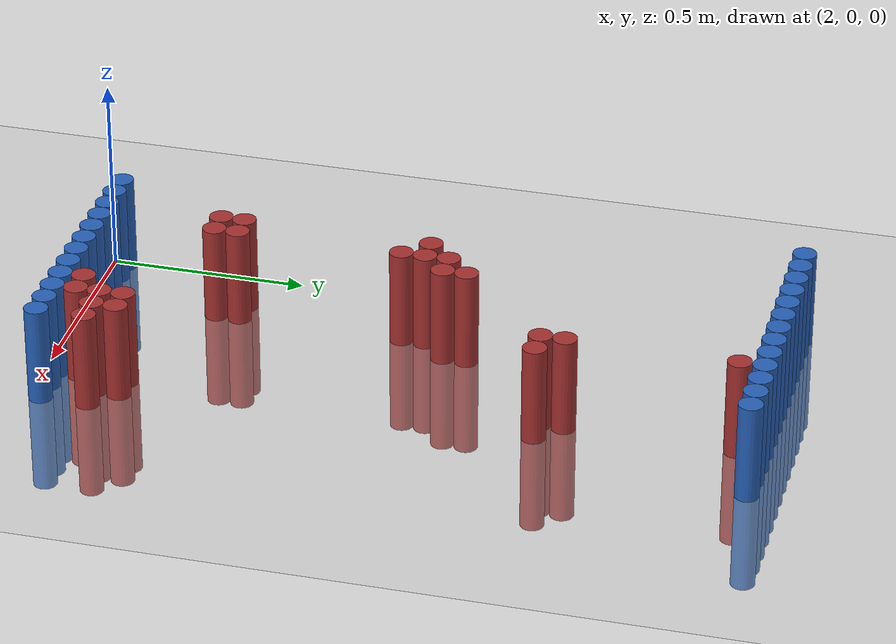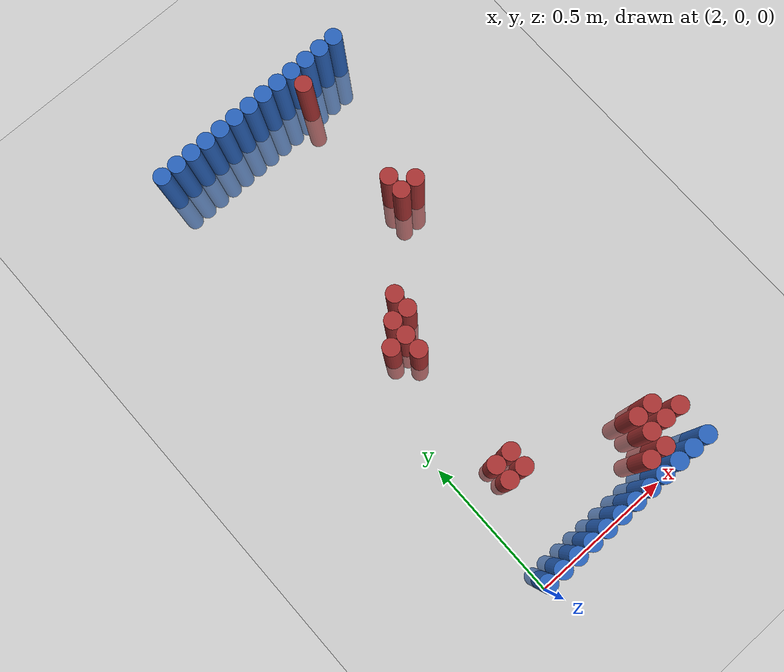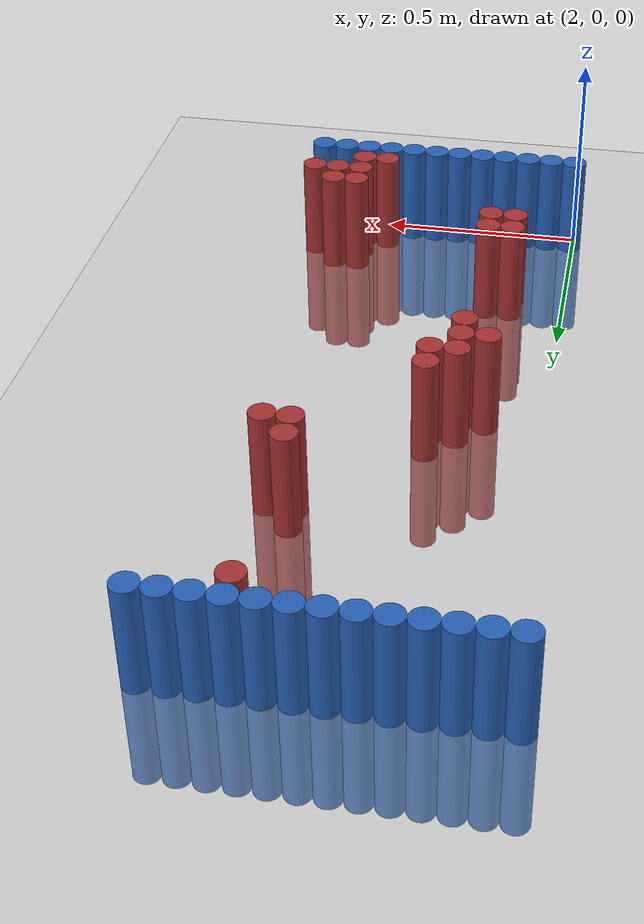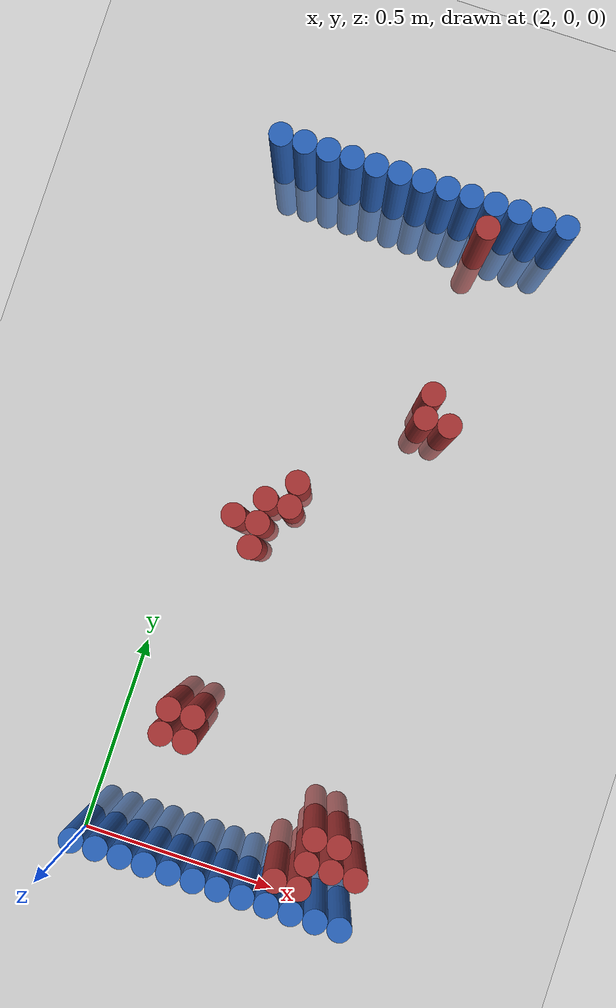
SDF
<sdf version="1.6">
 <world name="default">
  <model name="ground_plane">
   <static>1</static>
   <link name="link">
    <collision name="collision">
     <geometry><plane><normal>0 0 1</normal><size>100 100</size></plane></geometry>
     <surface><friction><ode><mu>100</mu><mu2>50</mu2></ode></friction></surface>
    </collision>
    <visual name="visual">
     <cast_shadows>0</cast_shadows>
     <geometry><plane><normal>0 0 1</normal><size>100 100</size></plane></geometry>
     <material>
      <script><uri>file://media/materials/scripts/gazebo.material</uri><name>Gazebo/Grey</name></script>
     </material>
    </visual>
   </link>
  </model>
  <model name="unit_cylinder_92">
   <static>1</static>
   <pose>1.950000 1.770000 0.000000 0.000000 0.000000 0.000000</pose>
   <link name="link">
    <inertial>
     <mass>1</mass>
     <inertia><ixx>0.145833</ixx><ixy>0</ixy><ixz>0</ixz><iyy>0.145833</iyy><iyz>0</iyz><izz>0.125</izz></inertia>
    </inertial>
    <collision name="collision">
     <geometry><cylinder><radius>0.030000</radius><length>0.5</length></cylinder></geometry>
    </collision>
    <visual name="visual">
     <geometry><cylinder><radius>0.030000</radius><length>0.5</length></cylinder></geometry>
     <material>
      <ambient>0.152000 0.379000 0.720000 1</ambient>
      <diffuse>0.152000 0.379000 0.720000 1</diffuse>
     </material>
     <material>
      <script><name>Gazebo/Grey</name><uri>file://media/materials/scripts/gazebo.material</uri></script>
     </material>
    </visual>
   </link>
  </model>
  <model name="unit_cylinder_93">
   <static>1</static>
   <pose>2.010000 0.030000 0.000000 0.000000 0.000000 0.000000</pose>
   <link name="link">
    <inertial>
     <mass>1</mass>
     <inertia><ixx>0.145833</ixx><ixy>0</ixy><ixz>0</ixz><iyy>0.145833</iyy><iyz>0</iyz><izz>0.125</izz></inertia>
    </inertial>
    <collision name="collision">
     <geometry><cylinder><radius>0.030000</radius><length>0.5</length></cylinder></geometry>
    </collision>
    <visual name="visual">
     <geometry><cylinder><radius>0.030000</radius><length>0.5</length></cylinder></geometry>
     <material>
      <ambient>0.152000 0.379000 0.720000 1</ambient>
      <diffuse>0.152000 0.379000 0.720000 1</diffuse>
     </material>
     <material>
      <script><name>Gazebo/Grey</name><uri>file://media/materials/scripts/gazebo.material</uri></script>
     </material>
    </visual>
   </link>
  </model>
  <model name="unit_cylinder_94">
   <static>1</static>
   <pose>2.010000 1.770000 0.000000 0.000000 0.000000 0.000000</pose>
   <link name="link">
    <inertial>
     <mass>1</mass>
     <inertia><ixx>0.145833</ixx><ixy>0</ixy><ixz>0</ixz><iyy>0.145833</iyy><iyz>0</iyz><izz>0.125</izz></inertia>
    </inertial>
    <collision name="collision">
     <geometry><cylinder><radius>0.030000</radius><length>0.5</length></cylinder></geometry>
    </collision>
    <visual name="visual">
     <geometry><cylinder><radius>0.030000</radius><length>0.5</length></cylinder></geometry>
     <material>
      <ambient>0.152000 0.379000 0.720000 1</ambient>
      <diffuse>0.152000 0.379000 0.720000 1</diffuse>
     </material>
     <material>
      <script><name>Gazebo/Grey</name><uri>file://media/materials/scripts/gazebo.material</uri></script>
     </material>
    </visual>
   </link>
  </model>
  <model name="unit_cylinder_95">
   <static>1</static>
   <pose>2.070000 1.770000 0.000000 0.000000 0.000000 0.000000</pose>
   <link name="link">
    <inertial>
     <mass>1</mass>
     <inertia><ixx>0.145833</ixx><ixy>0</ixy><ixz>0</ixz><iyy>0.145833</iyy><iyz>0</iyz><izz>0.125</izz></inertia>
    </inertial>
    <collision name="collision">
     <geometry><cylinder><radius>0.030000</radius><length>0.5</length></cylinder></geometry>
    </collision>
    <visual name="visual">
     <geometry><cylinder><radius>0.030000</radius><length>0.5</length></cylinder></geometry>
     <material>
      <ambient>0.152000 0.379000 0.720000 1</ambient>
      <diffuse>0.152000 0.379000 0.720000 1</diffuse>
     </material>
     <material>
      <script><name>Gazebo/Grey</name><uri>file://media/materials/scripts/gazebo.material</uri></script>
     </material>
    </visual>
   </link>
  </model>
  <model name="unit_cylinder_96">
   <static>1</static>
   <pose>2.130000 1.770000 0.000000 0.000000 0.000000 0.000000</pose>
   <link name="link">
    <inertial>
     <mass>1</mass>
     <inertia><ixx>0.145833</ixx><ixy>0</ixy><ixz>0</ixz><iyy>0.145833</iyy><iyz>0</iyz><izz>0.125</izz></inertia>
    </inertial>
    <collision name="collision">
     <geometry><cylinder><radius>0.030000</radius><length>0.5</length></cylinder></geometry>
    </collision>
    <visual name="visual">
     <geometry><cylinder><radius>0.030000</radius><length>0.5</length></cylinder></geometry>
     <material>
      <ambient>0.152000 0.379000 0.720000 1</ambient>
      <diffuse>0.152000 0.379000 0.720000 1</diffuse>
     </material>
     <material>
      <script><name>Gazebo/Grey</name><uri>file://media/materials/scripts/gazebo.material</uri></script>
     </material>
    </visual>
   </link>
  </model>
  <model name="unit_cylinder_97">
   <static>1</static>
   <pose>2.190000 1.770000 0.000000 0.000000 0.000000 0.000000</pose>
   <link name="link">
    <inertial>
     <mass>1</mass>
     <inertia><ixx>0.145833</ixx><ixy>0</ixy><ixz>0</ixz><iyy>0.145833</iyy><iyz>0</iyz><izz>0.125</izz></inertia>
    </inertial>
    <collision name="collision">
     <geometry><cylinder><radius>0.030000</radius><length>0.5</length></cylinder></geometry>
    </collision>
    <visual name="visual">
     <geometry><cylinder><radius>0.030000</radius><length>0.5</length></cylinder></geometry>
     <material>
      <ambient>0.152000 0.379000 0.720000 1</ambient>
      <diffuse>0.152000 0.379000 0.720000 1</diffuse>
     </material>
     <material>
      <script><name>Gazebo/Grey</name><uri>file://media/materials/scripts/gazebo.material</uri></script>
     </material>
    </visual>
   </link>
  </model>
  <model name="unit_cylinder_98">
   <static>1</static>
   <pose>2.250000 1.770000 0.000000 0.000000 0.000000 0.000000</pose>
   <link name="link">
    <inertial>
     <mass>1</mass>
     <inertia><ixx>0.145833</ixx><ixy>0</ixy><ixz>0</ixz><iyy>0.145833</iyy><iyz>0</iyz><izz>0.125</izz></inertia>
    </inertial>
    <collision name="collision">
     <geometry><cylinder><radius>0.030000</radius><length>0.5</length></cylinder></geometry>
    </collision>
    <visual name="visual">
     <geometry><cylinder><radius>0.030000</radius><length>0.5</length></cylinder></geometry>
     <material>
      <ambient>0.152000 0.379000 0.720000 1</ambient>
      <diffuse>0.152000 0.379000 0.720000 1</diffuse>
     </material>
     <material>
      <script><name>Gazebo/Grey</name><uri>file://media/materials/scripts/gazebo.material</uri></script>
     </material>
    </visual>
   </link>
  </model>
  <model name="unit_cylinder_99">
   <static>1</static>
   <pose>2.310000 1.770000 0.000000 0.000000 0.000000 0.000000</pose>
   <link name="link">
    <inertial>
     <mass>1</mass>
     <inertia><ixx>0.145833</ixx><ixy>0</ixy><ixz>0</ixz><iyy>0.145833</iyy><iyz>0</iyz><izz>0.125</izz></inertia>
    </inertial>
    <collision name="collision">
     <geometry><cylinder><radius>0.030000</radius><length>0.5</length></cylinder></geometry>
    </collision>
    <visual name="visual">
     <geometry><cylinder><radius>0.030000</radius><length>0.5</length></cylinder></geometry>
     <material>
      <ambient>0.152000 0.379000 0.720000 1</ambient>
      <diffuse>0.152000 0.379000 0.720000 1</diffuse>
     </material>
     <material>
      <script><name>Gazebo/Grey</name><uri>file://media/materials/scripts/gazebo.material</uri></script>
     </material>
    </visual>
   </link>
  </model>
  <model name="unit_cylinder_100">
   <static>1</static>
   <pose>2.370000 1.770000 0.000000 0.000000 0.000000 0.000000</pose>
   <link name="link">
    <inertial>
     <mass>1</mass>
     <inertia><ixx>0.145833</ixx><ixy>0</ixy><ixz>0</ixz><iyy>0.145833</iyy><iyz>0</iyz><izz>0.125</izz></inertia>
    </inertial>
    <collision name="collision">
     <geometry><cylinder><radius>0.030000</radius><length>0.5</length></cylinder></geometry>
    </collision>
    <visual name="visual">
     <geometry><cylinder><radius>0.030000</radius><length>0.5</length></cylinder></geometry>
     <material>
      <ambient>0.152000 0.379000 0.720000 1</ambient>
      <diffuse>0.152000 0.379000 0.720000 1</diffuse>
     </material>
     <material>
      <script><name>Gazebo/Grey</name><uri>file://media/materials/scripts/gazebo.material</uri></script>
     </material>
    </visual>
   </link>
  </model>
  <model name="unit_cylinder_101">
   <static>1</static>
   <pose>2.430000 1.770000 0.000000 0.000000 0.000000 0.000000</pose>
   <link name="link">
    <inertial>
     <mass>1</mass>
     <inertia><ixx>0.145833</ixx><ixy>0</ixy><ixz>0</ixz><iyy>0.145833</iyy><iyz>0</iyz><izz>0.125</izz></inertia>
    </inertial>
    <collision name="collision">
     <geometry><cylinder><radius>0.030000</radius><length>0.5</length></cylinder></geometry>
    </collision>
    <visual name="visual">
     <geometry><cylinder><radius>0.030000</radius><length>0.5</length></cylinder></geometry>
     <material>
      <ambient>0.152000 0.379000 0.720000 1</ambient>
      <diffuse>0.152000 0.379000 0.720000 1</diffuse>
     </material>
     <material>
      <script><name>Gazebo/Grey</name><uri>file://media/materials/scripts/gazebo.material</uri></script>
     </material>
    </visual>
   </link>
  </model>
  <model name="unit_cylinder_102">
   <static>1</static>
   <pose>2.490000 1.770000 0.000000 0.000000 0.000000 0.000000</pose>
   <link name="link">
    <inertial>
     <mass>1</mass>
     <inertia><ixx>0.145833</ixx><ixy>0</ixy><ixz>0</ixz><iyy>0.145833</iyy><iyz>0</iyz><izz>0.125</izz></inertia>
    </inertial>
    <collision name="collision">
     <geometry><cylinder><radius>0.030000</radius><length>0.5</length></cylinder></geometry>
    </collision>
    <visual name="visual">
     <geometry><cylinder><radius>0.030000</radius><length>0.5</length></cylinder></geometry>
     <material>
      <ambient>0.152000 0.379000 0.720000 1</ambient>
      <diffuse>0.152000 0.379000 0.720000 1</diffuse>
     </material>
     <material>
      <script><name>Gazebo/Grey</name><uri>file://media/materials/scripts/gazebo.material</uri></script>
     </material>
    </visual>
   </link>
  </model>
  <model name="unit_cylinder_103">
   <static>1</static>
   <pose>2.550000 1.770000 0.000000 0.000000 0.000000 0.000000</pose>
   <link name="link">
    <inertial>
     <mass>1</mass>
     <inertia><ixx>0.145833</ixx><ixy>0</ixy><ixz>0</ixz><iyy>0.145833</iyy><iyz>0</iyz><izz>0.125</izz></inertia>
    </inertial>
    <collision name="collision">
     <geometry><cylinder><radius>0.030000</radius><length>0.5</length></cylinder></geometry>
    </collision>
    <visual name="visual">
     <geometry><cylinder><radius>0.030000</radius><length>0.5</length></cylinder></geometry>
     <material>
      <ambient>0.152000 0.379000 0.720000 1</ambient>
      <diffuse>0.152000 0.379000 0.720000 1</diffuse>
     </material>
     <material>
      <script><name>Gazebo/Grey</name><uri>file://media/materials/scripts/gazebo.material</uri></script>
     </material>
    </visual>
   </link>
  </model>
  <model name="unit_cylinder_104">
   <static>1</static>
   <pose>2.610000 1.770000 0.000000 0.000000 0.000000 0.000000</pose>
   <link name="link">
    <inertial>
     <mass>1</mass>
     <inertia><ixx>0.145833</ixx><ixy>0</ixy><ixz>0</ixz><iyy>0.145833</iyy><iyz>0</iyz><izz>0.125</izz></inertia>
    </inertial>
    <collision name="collision">
     <geometry><cylinder><radius>0.030000</radius><length>0.5</length></cylinder></geometry>
    </collision>
    <visual name="visual">
     <geometry><cylinder><radius>0.030000</radius><length>0.5</length></cylinder></geometry>
     <material>
      <ambient>0.152000 0.379000 0.720000 1</ambient>
      <diffuse>0.152000 0.379000 0.720000 1</diffuse>
     </material>
     <material>
      <script><name>Gazebo/Grey</name><uri>file://media/materials/scripts/gazebo.material</uri></script>
     </material>
    </visual>
   </link>
  </model>
  <model name="unit_cylinder_105">
   <static>1</static>
   <pose>2.670000 1.770000 0.000000 0.000000 0.000000 0.000000</pose>
   <link name="link">
    <inertial>
     <mass>1</mass>
     <inertia><ixx>0.145833</ixx><ixy>0</ixy><ixz>0</ixz><iyy>0.145833</iyy><iyz>0</iyz><izz>0.125</izz></inertia>
    </inertial>
    <collision name="collision">
     <geometry><cylinder><radius>0.030000</radius><length>0.5</length></cylinder></geometry>
    </collision>
    <visual name="visual">
     <geometry><cylinder><radius>0.030000</radius><length>0.5</length></cylinder></geometry>
     <material>
      <ambient>0.152000 0.379000 0.720000 1</ambient>
      <diffuse>0.152000 0.379000 0.720000 1</diffuse>
     </material>
     <material>
      <script><name>Gazebo/Grey</name><uri>file://media/materials/scripts/gazebo.material</uri></script>
     </material>
    </visual>
   </link>
  </model>
  <model name="unit_cylinder_125">
   <static>1</static>
   <pose>2.490000 1.710000 0.000000 0.000000 0.000000 0.000000</pose>
   <link name="link">
    <inertial>
     <mass>1</mass>
     <inertia><ixx>0.145833</ixx><ixy>0</ixy><ixz>0</ixz><iyy>0.145833</iyy><iyz>0</iyz><izz>0.125</izz></inertia>
    </inertial>
    <collision name="collision">
     <geometry><cylinder><radius>0.030000</radius><length>0.5</length></cylinder></geometry>
    </collision>
    <visual name="visual">
     <geometry><cylinder><radius>0.030000</radius><length>0.5</length></cylinder></geometry>
     <material>
      <ambient>0.648000 0.192000 0.192000 1</ambient>
      <diffuse>0.648000 0.192000 0.192000 1</diffuse>
     </material>
     <material>
      <script><name>Gazebo/Grey</name><uri>file://media/materials/scripts/gazebo.material</uri></script>
     </material>
    </visual>
   </link>
  </model>
  <model name="unit_cylinder_152">
   <static>1</static>
   <pose>2.490000 1.290000 0.000000 0.000000 0.000000 0.000000</pose>
   <link name="link">
    <inertial>
     <mass>1</mass>
     <inertia><ixx>0.145833</ixx><ixy>0</ixy><ixz>0</ixz><iyy>0.145833</iyy><iyz>0</iyz><izz>0.125</izz></inertia>
    </inertial>
    <collision name="collision">
     <geometry><cylinder><radius>0.030000</radius><length>0.5</length></cylinder></geometry>
    </collision>
    <visual name="visual">
     <geometry><cylinder><radius>0.030000</radius><length>0.5</length></cylinder></geometry>
     <material>
      <ambient>0.648000 0.192000 0.192000 1</ambient>
      <diffuse>0.648000 0.192000 0.192000 1</diffuse>
     </material>
     <material>
      <script><name>Gazebo/Grey</name><uri>file://media/materials/scripts/gazebo.material</uri></script>
     </material>
    </visual>
   </link>
  </model>
  <model name="unit_cylinder_158">
   <static>1</static>
   <pose>2.490000 1.230000 0.000000 0.000000 0.000000 0.000000</pose>
   <link name="link">
    <inertial>
     <mass>1</mass>
     <inertia><ixx>0.145833</ixx><ixy>0</ixy><ixz>0</ixz><iyy>0.145833</iyy><iyz>0</iyz><izz>0.125</izz></inertia>
    </inertial>
    <collision name="collision">
     <geometry><cylinder><radius>0.030000</radius><length>0.5</length></cylinder></geometry>
    </collision>
    <visual name="visual">
     <geometry><cylinder><radius>0.030000</radius><length>0.5</length></cylinder></geometry>
     <material>
      <ambient>0.648000 0.192000 0.192000 1</ambient>
      <diffuse>0.648000 0.192000 0.192000 1</diffuse>
     </material>
     <material>
      <script><name>Gazebo/Grey</name><uri>file://media/materials/scripts/gazebo.material</uri></script>
     </material>
    </visual>
   </link>
  </model>
  <model name="unit_cylinder_159">
   <static>1</static>
   <pose>2.550000 1.230000 0.000000 0.000000 0.000000 0.000000</pose>
   <link name="link">
    <inertial>
     <mass>1</mass>
     <inertia><ixx>0.145833</ixx><ixy>0</ixy><ixz>0</ixz><iyy>0.145833</iyy><iyz>0</iyz><izz>0.125</izz></inertia>
    </inertial>
    <collision name="collision">
     <geometry><cylinder><radius>0.030000</radius><length>0.5</length></cylinder></geometry>
    </collision>
    <visual name="visual">
     <geometry><cylinder><radius>0.030000</radius><length>0.5</length></cylinder></geometry>
     <material>
      <ambient>0.648000 0.192000 0.192000 1</ambient>
      <diffuse>0.648000 0.192000 0.192000 1</diffuse>
     </material>
     <material>
      <script><name>Gazebo/Grey</name><uri>file://media/materials/scripts/gazebo.material</uri></script>
     </material>
    </visual>
   </link>
  </model>
  <model name="unit_cylinder_162">
   <static>1</static>
   <pose>2.250000 0.990000 0.000000 0.000000 0.000000 0.000000</pose>
   <link name="link">
    <inertial>
     <mass>1</mass>
     <inertia><ixx>0.145833</ixx><ixy>0</ixy><ixz>0</ixz><iyy>0.145833</iyy><iyz>0</iyz><izz>0.125</izz></inertia>
    </inertial>
    <collision name="collision">
     <geometry><cylinder><radius>0.030000</radius><length>0.5</length></cylinder></geometry>
    </collision>
    <visual name="visual">
     <geometry><cylinder><radius>0.030000</radius><length>0.5</length></cylinder></geometry>
     <material>
      <ambient>0.648000 0.192000 0.192000 1</ambient>
      <diffuse>0.648000 0.192000 0.192000 1</diffuse>
     </material>
     <material>
      <script><name>Gazebo/Grey</name><uri>file://media/materials/scripts/gazebo.material</uri></script>
     </material>
    </visual>
   </link>
  </model>
  <model name="unit_cylinder_164">
   <static>1</static>
   <pose>2.190000 0.930000 0.000000 0.000000 0.000000 0.000000</pose>
   <link name="link">
    <inertial>
     <mass>1</mass>
     <inertia><ixx>0.145833</ixx><ixy>0</ixy><ixz>0</ixz><iyy>0.145833</iyy><iyz>0</iyz><izz>0.125</izz></inertia>
    </inertial>
    <collision name="collision">
     <geometry><cylinder><radius>0.030000</radius><length>0.5</length></cylinder></geometry>
    </collision>
    <visual name="visual">
     <geometry><cylinder><radius>0.030000</radius><length>0.5</length></cylinder></geometry>
     <material>
      <ambient>0.648000 0.192000 0.192000 1</ambient>
      <diffuse>0.648000 0.192000 0.192000 1</diffuse>
     </material>
     <material>
      <script><name>Gazebo/Grey</name><uri>file://media/materials/scripts/gazebo.material</uri></script>
     </material>
    </visual>
   </link>
  </model>
  <model name="unit_cylinder_165">
   <static>1</static>
   <pose>2.250000 0.930000 0.000000 0.000000 0.000000 0.000000</pose>
   <link name="link">
    <inertial>
     <mass>1</mass>
     <inertia><ixx>0.145833</ixx><ixy>0</ixy><ixz>0</ixz><iyy>0.145833</iyy><iyz>0</iyz><izz>0.125</izz></inertia>
    </inertial>
    <collision name="collision">
     <geometry><cylinder><radius>0.030000</radius><length>0.5</length></cylinder></geometry>
    </collision>
    <visual name="visual">
     <geometry><cylinder><radius>0.030000</radius><length>0.5</length></cylinder></geometry>
     <material>
      <ambient>0.648000 0.192000 0.192000 1</ambient>
      <diffuse>0.648000 0.192000 0.192000 1</diffuse>
     </material>
     <material>
      <script><name>Gazebo/Grey</name><uri>file://media/materials/scripts/gazebo.material</uri></script>
     </material>
    </visual>
   </link>
  </model>
  <model name="unit_cylinder_168">
   <static>1</static>
   <pose>2.130000 0.870000 0.000000 0.000000 0.000000 0.000000</pose>
   <link name="link">
    <inertial>
     <mass>1</mass>
     <inertia><ixx>0.145833</ixx><ixy>0</ixy><ixz>0</ixz><iyy>0.145833</iyy><iyz>0</iyz><izz>0.125</izz></inertia>
    </inertial>
    <collision name="collision">
     <geometry><cylinder><radius>0.030000</radius><length>0.5</length></cylinder></geometry>
    </collision>
    <visual name="visual">
     <geometry><cylinder><radius>0.030000</radius><length>0.5</length></cylinder></geometry>
     <material>
      <ambient>0.648000 0.192000 0.192000 1</ambient>
      <diffuse>0.648000 0.192000 0.192000 1</diffuse>
     </material>
     <material>
      <script><name>Gazebo/Grey</name><uri>file://media/materials/scripts/gazebo.material</uri></script>
     </material>
    </visual>
   </link>
  </model>
  <model name="unit_cylinder_169">
   <static>1</static>
   <pose>2.190000 0.870000 0.000000 0.000000 0.000000 0.000000</pose>
   <link name="link">
    <inertial>
     <mass>1</mass>
     <inertia><ixx>0.145833</ixx><ixy>0</ixy><ixz>0</ixz><iyy>0.145833</iyy><iyz>0</iyz><izz>0.125</izz></inertia>
    </inertial>
    <collision name="collision">
     <geometry><cylinder><radius>0.030000</radius><length>0.5</length></cylinder></geometry>
    </collision>
    <visual name="visual">
     <geometry><cylinder><radius>0.030000</radius><length>0.5</length></cylinder></geometry>
     <material>
      <ambient>0.648000 0.192000 0.192000 1</ambient>
      <diffuse>0.648000 0.192000 0.192000 1</diffuse>
     </material>
     <material>
      <script><name>Gazebo/Grey</name><uri>file://media/materials/scripts/gazebo.material</uri></script>
     </material>
    </visual>
   </link>
  </model>
  <model name="unit_cylinder_170">
   <static>1</static>
   <pose>2.190000 0.810000 0.000000 0.000000 0.000000 0.000000</pose>
   <link name="link">
    <inertial>
     <mass>1</mass>
     <inertia><ixx>0.145833</ixx><ixy>0</ixy><ixz>0</ixz><iyy>0.145833</iyy><iyz>0</iyz><izz>0.125</izz></inertia>
    </inertial>
    <collision name="collision">
     <geometry><cylinder><radius>0.030000</radius><length>0.5</length></cylinder></geometry>
    </collision>
    <visual name="visual">
     <geometry><cylinder><radius>0.030000</radius><length>0.5</length></cylinder></geometry>
     <material>
      <ambient>0.648000 0.192000 0.192000 1</ambient>
      <diffuse>0.648000 0.192000 0.192000 1</diffuse>
     </material>
     <material>
      <script><name>Gazebo/Grey</name><uri>file://media/materials/scripts/gazebo.material</uri></script>
     </material>
    </visual>
   </link>
  </model>
  <model name="unit_cylinder_180">
   <static>1</static>
   <pose>2.130000 0.390000 0.000000 0.000000 0.000000 0.000000</pose>
   <link name="link">
    <inertial>
     <mass>1</mass>
     <inertia><ixx>0.145833</ixx><ixy>0</ixy><ixz>0</ixz><iyy>0.145833</iyy><iyz>0</iyz><izz>0.125</izz></inertia>
    </inertial>
    <collision name="collision">
     <geometry><cylinder><radius>0.030000</radius><length>0.5</length></cylinder></geometry>
    </collision>
    <visual name="visual">
     <geometry><cylinder><radius>0.030000</radius><length>0.5</length></cylinder></geometry>
     <material>
      <ambient>0.648000 0.192000 0.192000 1</ambient>
      <diffuse>0.648000 0.192000 0.192000 1</diffuse>
     </material>
     <material>
      <script><name>Gazebo/Grey</name><uri>file://media/materials/scripts/gazebo.material</uri></script>
     </material>
    </visual>
   </link>
  </model>
  <model name="unit_cylinder_181">
   <static>1</static>
   <pose>2.190000 0.390000 0.000000 0.000000 0.000000 0.000000</pose>
   <link name="link">
    <inertial>
     <mass>1</mass>
     <inertia><ixx>0.145833</ixx><ixy>0</ixy><ixz>0</ixz><iyy>0.145833</iyy><iyz>0</iyz><izz>0.125</izz></inertia>
    </inertial>
    <collision name="collision">
     <geometry><cylinder><radius>0.030000</radius><length>0.5</length></cylinder></geometry>
    </collision>
    <visual name="visual">
     <geometry><cylinder><radius>0.030000</radius><length>0.5</length></cylinder></geometry>
     <material>
      <ambient>0.648000 0.192000 0.192000 1</ambient>
      <diffuse>0.648000 0.192000 0.192000 1</diffuse>
     </material>
     <material>
      <script><name>Gazebo/Grey</name><uri>file://media/materials/scripts/gazebo.material</uri></script>
     </material>
    </visual>
   </link>
  </model>
  <model name="unit_cylinder_184">
   <static>1</static>
   <pose>2.130000 0.330000 0.000000 0.000000 0.000000 0.000000</pose>
   <link name="link">
    <inertial>
     <mass>1</mass>
     <inertia><ixx>0.145833</ixx><ixy>0</ixy><ixz>0</ixz><iyy>0.145833</iyy><iyz>0</iyz><izz>0.125</izz></inertia>
    </inertial>
    <collision name="collision">
     <geometry><cylinder><radius>0.030000</radius><length>0.5</length></cylinder></geometry>
    </collision>
    <visual name="visual">
     <geometry><cylinder><radius>0.030000</radius><length>0.5</length></cylinder></geometry>
     <material>
      <ambient>0.648000 0.192000 0.192000 1</ambient>
      <diffuse>0.648000 0.192000 0.192000 1</diffuse>
     </material>
     <material>
      <script><name>Gazebo/Grey</name><uri>file://media/materials/scripts/gazebo.material</uri></script>
     </material>
    </visual>
   </link>
  </model>
  <model name="unit_cylinder_185">
   <static>1</static>
   <pose>2.190000 0.330000 0.000000 0.000000 0.000000 0.000000</pose>
   <link name="link">
    <inertial>
     <mass>1</mass>
     <inertia><ixx>0.145833</ixx><ixy>0</ixy><ixz>0</ixz><iyy>0.145833</iyy><iyz>0</iyz><izz>0.125</izz></inertia>
    </inertial>
    <collision name="collision">
     <geometry><cylinder><radius>0.030000</radius><length>0.5</length></cylinder></geometry>
    </collision>
    <visual name="visual">
     <geometry><cylinder><radius>0.030000</radius><length>0.5</length></cylinder></geometry>
     <material>
      <ambient>0.648000 0.192000 0.192000 1</ambient>
      <diffuse>0.648000 0.192000 0.192000 1</diffuse>
     </material>
     <material>
      <script><name>Gazebo/Grey</name><uri>file://media/materials/scripts/gazebo.material</uri></script>
     </material>
    </visual>
   </link>
  </model>
  <model name="unit_cylinder_186">
   <static>1</static>
   <pose>2.550000 0.210000 0.000000 0.000000 0.000000 0.000000</pose>
   <link name="link">
    <inertial>
     <mass>1</mass>
     <inertia><ixx>0.145833</ixx><ixy>0</ixy><ixz>0</ixz><iyy>0.145833</iyy><iyz>0</iyz><izz>0.125</izz></inertia>
    </inertial>
    <collision name="collision">
     <geometry><cylinder><radius>0.030000</radius><length>0.5</length></cylinder></geometry>
    </collision>
    <visual name="visual">
     <geometry><cylinder><radius>0.030000</radius><length>0.5</length></cylinder></geometry>
     <material>
      <ambient>0.648000 0.192000 0.192000 1</ambient>
      <diffuse>0.648000 0.192000 0.192000 1</diffuse>
     </material>
     <material>
      <script><name>Gazebo/Grey</name><uri>file://media/materials/scripts/gazebo.material</uri></script>
     </material>
    </visual>
   </link>
  </model>
  <model name="unit_cylinder_187">
   <static>1</static>
   <pose>2.610000 0.210000 0.000000 0.000000 0.000000 0.000000</pose>
   <link name="link">
    <inertial>
     <mass>1</mass>
     <inertia><ixx>0.145833</ixx><ixy>0</ixy><ixz>0</ixz><iyy>0.145833</iyy><iyz>0</iyz><izz>0.125</izz></inertia>
    </inertial>
    <collision name="collision">
     <geometry><cylinder><radius>0.030000</radius><length>0.5</length></cylinder></geometry>
    </collision>
    <visual name="visual">
     <geometry><cylinder><radius>0.030000</radius><length>0.5</length></cylinder></geometry>
     <material>
      <ambient>0.648000 0.192000 0.192000 1</ambient>
      <diffuse>0.648000 0.192000 0.192000 1</diffuse>
     </material>
     <material>
      <script><name>Gazebo/Grey</name><uri>file://media/materials/scripts/gazebo.material</uri></script>
     </material>
    </visual>
   </link>
  </model>
  <model name="unit_cylinder_189">
   <static>1</static>
   <pose>2.550000 0.150000 0.000000 0.000000 0.000000 0.000000</pose>
   <link name="link">
    <inertial>
     <mass>1</mass>
     <inertia><ixx>0.145833</ixx><ixy>0</ixy><ixz>0</ixz><iyy>0.145833</iyy><iyz>0</iyz><izz>0.125</izz></inertia>
    </inertial>
    <collision name="collision">
     <geometry><cylinder><radius>0.030000</radius><length>0.5</length></cylinder></geometry>
    </collision>
    <visual name="visual">
     <geometry><cylinder><radius>0.030000</radius><length>0.5</length></cylinder></geometry>
     <material>
      <ambient>0.648000 0.192000 0.192000 1</ambient>
      <diffuse>0.648000 0.192000 0.192000 1</diffuse>
     </material>
     <material>
      <script><name>Gazebo/Grey</name><uri>file://media/materials/scripts/gazebo.material</uri></script>
     </material>
    </visual>
   </link>
  </model>
  <model name="unit_cylinder_190">
   <static>1</static>
   <pose>2.610000 0.150000 0.000000 0.000000 0.000000 0.000000</pose>
   <link name="link">
    <inertial>
     <mass>1</mass>
     <inertia><ixx>0.145833</ixx><ixy>0</ixy><ixz>0</ixz><iyy>0.145833</iyy><iyz>0</iyz><izz>0.125</izz></inertia>
    </inertial>
    <collision name="collision">
     <geometry><cylinder><radius>0.030000</radius><length>0.5</length></cylinder></geometry>
    </collision>
    <visual name="visual">
     <geometry><cylinder><radius>0.030000</radius><length>0.5</length></cylinder></geometry>
     <material>
      <ambient>0.648000 0.192000 0.192000 1</ambient>
      <diffuse>0.648000 0.192000 0.192000 1</diffuse>
     </material>
     <material>
      <script><name>Gazebo/Grey</name><uri>file://media/materials/scripts/gazebo.material</uri></script>
     </material>
    </visual>
   </link>
  </model>
  <model name="unit_cylinder_191">
   <static>1</static>
   <pose>2.670000 0.150000 0.000000 0.000000 0.000000 0.000000</pose>
   <link name="link">
    <inertial>
     <mass>1</mass>
     <inertia><ixx>0.145833</ixx><ixy>0</ixy><ixz>0</ixz><iyy>0.145833</iyy><iyz>0</iyz><izz>0.125</izz></inertia>
    </inertial>
    <collision name="collision">
     <geometry><cylinder><radius>0.030000</radius><length>0.5</length></cylinder></geometry>
    </collision>
    <visual name="visual">
     <geometry><cylinder><radius>0.030000</radius><length>0.5</length></cylinder></geometry>
     <material>
      <ambient>0.648000 0.192000 0.192000 1</ambient>
      <diffuse>0.648000 0.192000 0.192000 1</diffuse>
     </material>
     <material>
      <script><name>Gazebo/Grey</name><uri>file://media/materials/scripts/gazebo.material</uri></script>
     </material>
    </visual>
   </link>
  </model>
  <model name="unit_cylinder_195">
   <static>1</static>
   <pose>2.490000 0.090000 0.000000 0.000000 0.000000 0.000000</pose>
   <link name="link">
    <inertial>
     <mass>1</mass>
     <inertia><ixx>0.145833</ixx><ixy>0</ixy><ixz>0</ixz><iyy>0.145833</iyy><iyz>0</iyz><izz>0.125</izz></inertia>
    </inertial>
    <collision name="collision">
     <geometry><cylinder><radius>0.030000</radius><length>0.5</length></cylinder></geometry>
    </collision>
    <visual name="visual">
     <geometry><cylinder><radius>0.030000</radius><length>0.5</length></cylinder></geometry>
     <material>
      <ambient>0.648000 0.192000 0.192000 1</ambient>
      <diffuse>0.648000 0.192000 0.192000 1</diffuse>
     </material>
     <material>
      <script><name>Gazebo/Grey</name><uri>file://media/materials/scripts/gazebo.material</uri></script>
     </material>
    </visual>
   </link>
  </model>
  <model name="unit_cylinder_196">
   <static>1</static>
   <pose>2.550000 0.090000 0.000000 0.000000 0.000000 0.000000</pose>
   <link name="link">
    <inertial>
     <mass>1</mass>
     <inertia><ixx>0.145833</ixx><ixy>0</ixy><ixz>0</ixz><iyy>0.145833</iyy><iyz>0</iyz><izz>0.125</izz></inertia>
    </inertial>
    <collision name="collision">
     <geometry><cylinder><radius>0.030000</radius><length>0.5</length></cylinder></geometry>
    </collision>
    <visual name="visual">
     <geometry><cylinder><radius>0.030000</radius><length>0.5</length></cylinder></geometry>
     <material>
      <ambient>0.648000 0.192000 0.192000 1</ambient>
      <diffuse>0.648000 0.192000 0.192000 1</diffuse>
     </material>
     <material>
      <script><name>Gazebo/Grey</name><uri>file://media/materials/scripts/gazebo.material</uri></script>
     </material>
    </visual>
   </link>
  </model>
  <model name="unit_cylinder_201">
   <static>1</static>
   <pose>2.070000 0.030000 0.000000 0.000000 0.000000 0.000000</pose>
   <link name="link">
    <inertial>
     <mass>1</mass>
     <inertia><ixx>0.145833</ixx><ixy>0</ixy><ixz>0</ixz><iyy>0.145833</iyy><iyz>0</iyz><izz>0.125</izz></inertia>
    </inertial>
    <collision name="collision">
     <geometry><cylinder><radius>0.030000</radius><length>0.5</length></cylinder></geometry>
    </collision>
    <visual name="visual">
     <geometry><cylinder><radius>0.030000</radius><length>0.5</length></cylinder></geometry>
     <material>
      <ambient>0.152000 0.379000 0.720000 1</ambient>
      <diffuse>0.152000 0.379000 0.720000 1</diffuse>
     </material>
     <material>
      <script><name>Gazebo/Grey</name><uri>file://media/materials/scripts/gazebo.material</uri></script>
     </material>
    </visual>
   </link>
  </model>
  <model name="unit_cylinder_202">
   <static>1</static>
   <pose>2.130000 0.030000 0.000000 0.000000 0.000000 0.000000</pose>
   <link name="link">
    <inertial>
     <mass>1</mass>
     <inertia><ixx>0.145833</ixx><ixy>0</ixy><ixz>0</ixz><iyy>0.145833</iyy><iyz>0</iyz><izz>0.125</izz></inertia>
    </inertial>
    <collision name="collision">
     <geometry><cylinder><radius>0.030000</radius><length>0.5</length></cylinder></geometry>
    </collision>
    <visual name="visual">
     <geometry><cylinder><radius>0.030000</radius><length>0.5</length></cylinder></geometry>
     <material>
      <ambient>0.152000 0.379000 0.720000 1</ambient>
      <diffuse>0.152000 0.379000 0.720000 1</diffuse>
     </material>
     <material>
      <script><name>Gazebo/Grey</name><uri>file://media/materials/scripts/gazebo.material</uri></script>
     </material>
    </visual>
   </link>
  </model>
  <model name="unit_cylinder_203">
   <static>1</static>
   <pose>2.190000 0.030000 0.000000 0.000000 0.000000 0.000000</pose>
   <link name="link">
    <inertial>
     <mass>1</mass>
     <inertia><ixx>0.145833</ixx><ixy>0</ixy><ixz>0</ixz><iyy>0.145833</iyy><iyz>0</iyz><izz>0.125</izz></inertia>
    </inertial>
    <collision name="collision">
     <geometry><cylinder><radius>0.030000</radius><length>0.5</length></cylinder></geometry>
    </collision>
    <visual name="visual">
     <geometry><cylinder><radius>0.030000</radius><length>0.5</length></cylinder></geometry>
     <material>
      <ambient>0.152000 0.379000 0.720000 1</ambient>
      <diffuse>0.152000 0.379000 0.720000 1</diffuse>
     </material>
     <material>
      <script><name>Gazebo/Grey</name><uri>file://media/materials/scripts/gazebo.material</uri></script>
     </material>
    </visual>
   </link>
  </model>
  <model name="unit_cylinder_204">
   <static>1</static>
   <pose>2.250000 0.030000 0.000000 0.000000 0.000000 0.000000</pose>
   <link name="link">
    <inertial>
     <mass>1</mass>
     <inertia><ixx>0.145833</ixx><ixy>0</ixy><ixz>0</ixz><iyy>0.145833</iyy><iyz>0</iyz><izz>0.125</izz></inertia>
    </inertial>
    <collision name="collision">
     <geometry><cylinder><radius>0.030000</radius><length>0.5</length></cylinder></geometry>
    </collision>
    <visual name="visual">
     <geometry><cylinder><radius>0.030000</radius><length>0.5</length></cylinder></geometry>
     <material>
      <ambient>0.152000 0.379000 0.720000 1</ambient>
      <diffuse>0.152000 0.379000 0.720000 1</diffuse>
     </material>
     <material>
      <script><name>Gazebo/Grey</name><uri>file://media/materials/scripts/gazebo.material</uri></script>
     </material>
    </visual>
   </link>
  </model>
  <model name="unit_cylinder_205">
   <static>1</static>
   <pose>2.310000 0.030000 0.000000 0.000000 0.000000 0.000000</pose>
   <link name="link">
    <inertial>
     <mass>1</mass>
     <inertia><ixx>0.145833</ixx><ixy>0</ixy><ixz>0</ixz><iyy>0.145833</iyy><iyz>0</iyz><izz>0.125</izz></inertia>
    </inertial>
    <collision name="collision">
     <geometry><cylinder><radius>0.030000</radius><length>0.5</length></cylinder></geometry>
    </collision>
    <visual name="visual">
     <geometry><cylinder><radius>0.030000</radius><length>0.5</length></cylinder></geometry>
     <material>
      <ambient>0.152000 0.379000 0.720000 1</ambient>
      <diffuse>0.152000 0.379000 0.720000 1</diffuse>
     </material>
     <material>
      <script><name>Gazebo/Grey</name><uri>file://media/materials/scripts/gazebo.material</uri></script>
     </material>
    </visual>
   </link>
  </model>
  <model name="unit_cylinder_206">
   <static>1</static>
   <pose>2.370000 0.030000 0.000000 0.000000 0.000000 0.000000</pose>
   <link name="link">
    <inertial>
     <mass>1</mass>
     <inertia><ixx>0.145833</ixx><ixy>0</ixy><ixz>0</ixz><iyy>0.145833</iyy><iyz>0</iyz><izz>0.125</izz></inertia>
    </inertial>
    <collision name="collision">
     <geometry><cylinder><radius>0.030000</radius><length>0.5</length></cylinder></geometry>
    </collision>
    <visual name="visual">
     <geometry><cylinder><radius>0.030000</radius><length>0.5</length></cylinder></geometry>
     <material>
      <ambient>0.152000 0.379000 0.720000 1</ambient>
      <diffuse>0.152000 0.379000 0.720000 1</diffuse>
     </material>
     <material>
      <script><name>Gazebo/Grey</name><uri>file://media/materials/scripts/gazebo.material</uri></script>
     </material>
    </visual>
   </link>
  </model>
  <model name="unit_cylinder_207">
   <static>1</static>
   <pose>2.430000 0.030000 0.000000 0.000000 0.000000 0.000000</pose>
   <link name="link">
    <inertial>
     <mass>1</mass>
     <inertia><ixx>0.145833</ixx><ixy>0</ixy><ixz>0</ixz><iyy>0.145833</iyy><iyz>0</iyz><izz>0.125</izz></inertia>
    </inertial>
    <collision name="collision">
     <geometry><cylinder><radius>0.030000</radius><length>0.5</length></cylinder></geometry>
    </collision>
    <visual name="visual">
     <geometry><cylinder><radius>0.030000</radius><length>0.5</length></cylinder></geometry>
     <material>
      <ambient>0.152000 0.379000 0.720000 1</ambient>
      <diffuse>0.152000 0.379000 0.720000 1</diffuse>
     </material>
     <material>
      <script><name>Gazebo/Grey</name><uri>file://media/materials/scripts/gazebo.material</uri></script>
     </material>
    </visual>
   </link>
  </model>
  <model name="unit_cylinder_208">
   <static>1</static>
   <pose>2.490000 0.030000 0.000000 0.000000 0.000000 0.000000</pose>
   <link name="link">
    <inertial>
     <mass>1</mass>
     <inertia><ixx>0.145833</ixx><ixy>0</ixy><ixz>0</ixz><iyy>0.145833</iyy><iyz>0</iyz><izz>0.125</izz></inertia>
    </inertial>
    <collision name="collision">
     <geometry><cylinder><radius>0.030000</radius><length>0.5</length></cylinder></geometry>
    </collision>
    <visual name="visual">
     <geometry><cylinder><radius>0.030000</radius><length>0.5</length></cylinder></geometry>
     <material>
      <ambient>0.152000 0.379000 0.720000 1</ambient>
      <diffuse>0.152000 0.379000 0.720000 1</diffuse>
     </material>
     <material>
      <script><name>Gazebo/Grey</name><uri>file://media/materials/scripts/gazebo.material</uri></script>
     </material>
    </visual>
   </link>
  </model>
  <model name="unit_cylinder_209">
   <static>1</static>
   <pose>2.550000 0.030000 0.000000 0.000000 0.000000 0.000000</pose>
   <link name="link">
    <inertial>
     <mass>1</mass>
     <inertia><ixx>0.145833</ixx><ixy>0</ixy><ixz>0</ixz><iyy>0.145833</iyy><iyz>0</iyz><izz>0.125</izz></inertia>
    </inertial>
    <collision name="collision">
     <geometry><cylinder><radius>0.030000</radius><length>0.5</length></cylinder></geometry>
    </collision>
    <visual name="visual">
     <geometry><cylinder><radius>0.030000</radius><length>0.5</length></cylinder></geometry>
     <material>
      <ambient>0.152000 0.379000 0.720000 1</ambient>
      <diffuse>0.152000 0.379000 0.720000 1</diffuse>
     </material>
     <material>
      <script><name>Gazebo/Grey</name><uri>file://media/materials/scripts/gazebo.material</uri></script>
     </material>
    </visual>
   </link>
  </model>
  <model name="unit_cylinder_210">
   <static>1</static>
   <pose>2.610000 0.030000 0.000000 0.000000 0.000000 0.000000</pose>
   <link name="link">
    <inertial>
     <mass>1</mass>
     <inertia><ixx>0.145833</ixx><ixy>0</ixy><ixz>0</ixz><iyy>0.145833</iyy><iyz>0</iyz><izz>0.125</izz></inertia>
    </inertial>
    <collision name="collision">
     <geometry><cylinder><radius>0.030000</radius><length>0.5</length></cylinder></geometry>
    </collision>
    <visual name="visual">
     <geometry><cylinder><radius>0.030000</radius><length>0.5</length></cylinder></geometry>
     <material>
      <ambient>0.152000 0.379000 0.720000 1</ambient>
      <diffuse>0.152000 0.379000 0.720000 1</diffuse>
     </material>
     <material>
      <script><name>Gazebo/Grey</name><uri>file://media/materials/scripts/gazebo.material</uri></script>
     </material>
    </visual>
   </link>
  </model>
  <model name="unit_cylinder_211">
   <static>1</static>
   <pose>2.670000 0.030000 0.000000 0.000000 0.000000 0.000000</pose>
   <link name="link">
    <inertial>
     <mass>1</mass>
     <inertia><ixx>0.145833</ixx><ixy>0</ixy><ixz>0</ixz><iyy>0.145833</iyy><iyz>0</iyz><izz>0.125</izz></inertia>
    </inertial>
    <collision name="collision">
     <geometry><cylinder><radius>0.030000</radius><length>0.5</length></cylinder></geometry>
    </collision>
    <visual name="visual">
     <geometry><cylinder><radius>0.030000</radius><length>0.5</length></cylinder></geometry>
     <material>
      <ambient>0.152000 0.379000 0.720000 1</ambient>
      <diffuse>0.152000 0.379000 0.720000 1</diffuse>
     </material>
     <material>
      <script><name>Gazebo/Grey</name><uri>file://media/materials/scripts/gazebo.material</uri></script>
     </material>
    </visual>
   </link>
  </model>
 </world>
</sdf>
